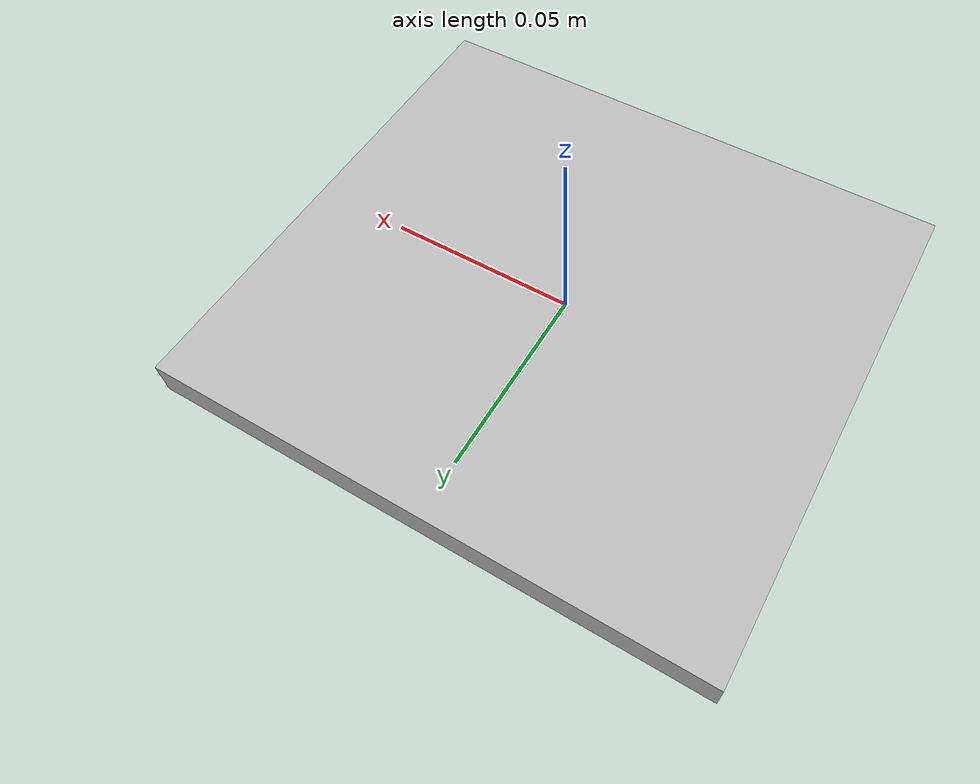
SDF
<?xml version='1.0'?>
<sdf version='1.6'>
  <model name='Apriltag36_11_00015'>
    <link name='main'>
      <pose frame=''>0 0 0 0 0 0</pose>
      <visual name='main_Visual'>
        <geometry>
          <box>
            <size>0.1457 0.1325 0.01</size>
          </box>
        </geometry>
        <material>
          <script>
            <uri>model://Apriltag36_11_00015/materials/scripts</uri>
            <uri>model://Apriltag36_11_00015/materials/textures</uri>
            <name>Apriltag36_11_00015</name>
          </script>
        </material>
      </visual>
    </link>
  </model>
</sdf>
